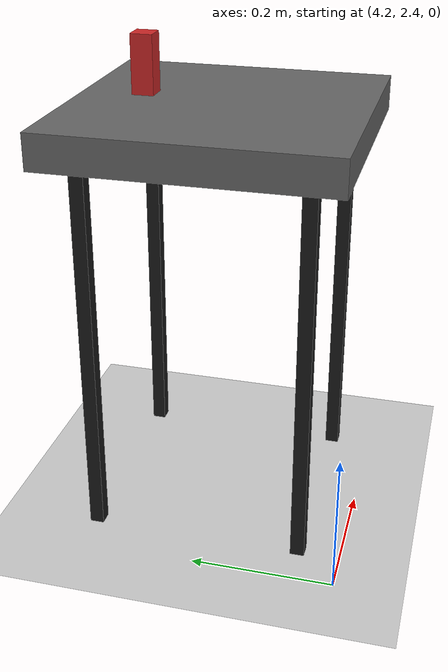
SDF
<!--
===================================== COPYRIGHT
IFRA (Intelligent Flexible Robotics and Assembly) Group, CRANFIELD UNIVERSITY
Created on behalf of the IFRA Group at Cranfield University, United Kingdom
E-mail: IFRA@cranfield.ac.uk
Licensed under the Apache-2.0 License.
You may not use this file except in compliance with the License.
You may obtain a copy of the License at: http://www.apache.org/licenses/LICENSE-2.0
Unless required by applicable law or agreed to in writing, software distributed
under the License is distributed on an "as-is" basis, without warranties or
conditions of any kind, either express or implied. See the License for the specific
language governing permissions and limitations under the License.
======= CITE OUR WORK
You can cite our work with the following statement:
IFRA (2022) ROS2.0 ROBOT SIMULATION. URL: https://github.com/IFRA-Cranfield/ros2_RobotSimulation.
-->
<sdf version="1.4">
 <world name="default">
  <include><uri>model://ground_plane</uri></include>
  <include><uri>model://sun</uri></include>
  <scene><shadows>0</shadows></scene>
  <model name="box">
   <link name="box">
    <collision name="box_collision"><geometry><box><size>0.03 0.03 0.08</size></box></geometry></collision>
    <visual name="box_visual">
     <geometry><box><size>0.03 0.03 0.08</size></box></geometry>
     <material>
      <script><name>Gazebo/Red</name><uri>file://media/materials/scripts/gazebo.material</uri></script>
     </material>
    </visual>
   </link>
   <pose>4.39 2.71 0.65 0 0 0</pose>
  </model>
  <model name="my_table">
   <property name="cx" type="double" value="4.41"/>
   <property name="cy" type="double" value="2.31"/>
   <property name="cz" type="double" value="0.575"/>
   <static>true</static>
   <link name="top_link">
    <pose>4.41 2.61 0.575 0 0 0</pose>
    <visual name="visual">
     <geometry><box><size>0.4 0.4 0.05</size></box></geometry>
     <material>
      <ambient>0.4 0.4 0.4 1.0</ambient>
      <diffuse>0.4 0.4 0.4 1.0</diffuse>
      <specular>0.2 0.2 0.2 1.0</specular>
      <emissive>0.0 0.0 0.1 1.0</emissive>
     </material>
    </visual>
    <collision name="collision"><geometry><box><size>0.4 0.4 0.05</size></box></geometry></collision>
   </link>
   <link name="leg1">
    <pose>4.26 2.46 0.275 0 0 0</pose>
    <visual name="visual">
     <geometry><box><size>0.02 0.02 0.55</size></box></geometry>
     <material>
      <ambient>0.1 0.1 0.1 1.0</ambient>
      <diffuse>0.1 0.1 0.1 1.0</diffuse>
      <specular>0.2 0.2 0.2 1.0</specular>
      <emissive>0.0 0.0 0.1 1.0</emissive>
     </material>
    </visual>
    <collision name="collision"><geometry><box><size>0.05 0.05 0.55</size></box></geometry></collision>
   </link>
   <link name="leg2">
    <pose>4.56 2.46 0.275 0 0 0</pose>
    <visual name="visual">
     <geometry><box><size>0.02 0.02 0.55</size></box></geometry>
     <material>
      <ambient>0.1 0.1 0.1 1.0</ambient>
      <diffuse>0.1 0.1 0.1 1.0</diffuse>
      <specular>0.2 0.2 0.2 1.0</specular>
      <emissive>0.0 0.0 0.1 1.0</emissive>
     </material>
    </visual>
    <collision name="collision"><geometry><box><size>0.05 0.05 0.55</size></box></geometry></collision>
   </link>
   <link name="leg3">
    <pose>4.56 2.76 0.275 0 0 0</pose>
    <visual name="visual">
     <geometry><box><size>0.02 0.02 0.55</size></box></geometry>
     <material>
      <ambient>0.1 0.1 0.1 1.0</ambient>
      <diffuse>0.1 0.1 0.1 1.0</diffuse>
      <specular>0.2 0.2 0.2 1.0</specular>
      <emissive>0.0 0.0 0.1 1.0</emissive>
     </material>
    </visual>
    <collision name="collision"><geometry><box><size>0.05 0.05 0.55</size></box></geometry></collision>
   </link>
   <link name="leg4">
    <pose>4.26 2.76 0.275 0 0 0</pose>
    <visual name="visual">
     <geometry><box><size>0.02 0.02 0.55</size></box></geometry>
     <material>
      <ambient>0.1 0.1 0.1 1.0</ambient>
      <diffuse>0.1 0.1 0.1 1.0</diffuse>
      <specular>0.2 0.2 0.2 1.0</specular>
      <emissive>0.0 0.0 0.1 1.0</emissive>
     </material>
    </visual>
    <collision name="collision"><geometry><box><size>0.02 0.02 0.55</size></box></geometry></collision>
   </link>
  </model>
  <plugin name="gazebo_ros_state" filename="libgazebo_ros_state.so">
   <ros>
    <namespace>/ros2_grasp</namespace>
    <argument>model_states:=model_states</argument>
    <argument>link_states:=link_states</argument>
   </ros>
   <update_rate>1.0</update_rate>
  </plugin>
  <plugin name="gazebo_ros_properties" filename="libgazebo_ros_properties.so">
   <ros><namespace>/ros2_grasp</namespace></ros>
  </plugin>
 </world>
</sdf>
